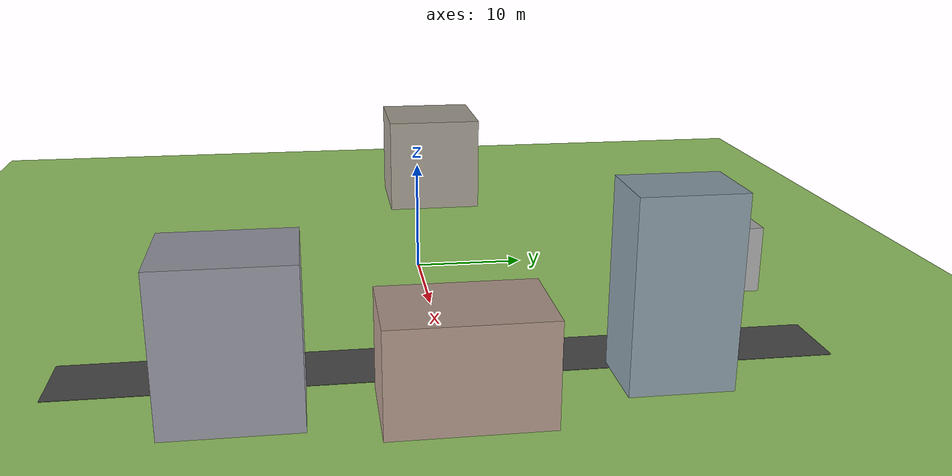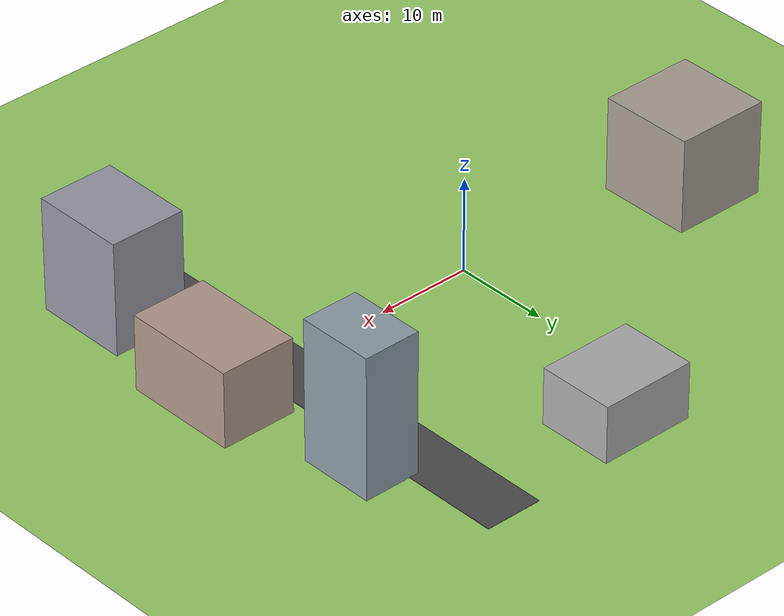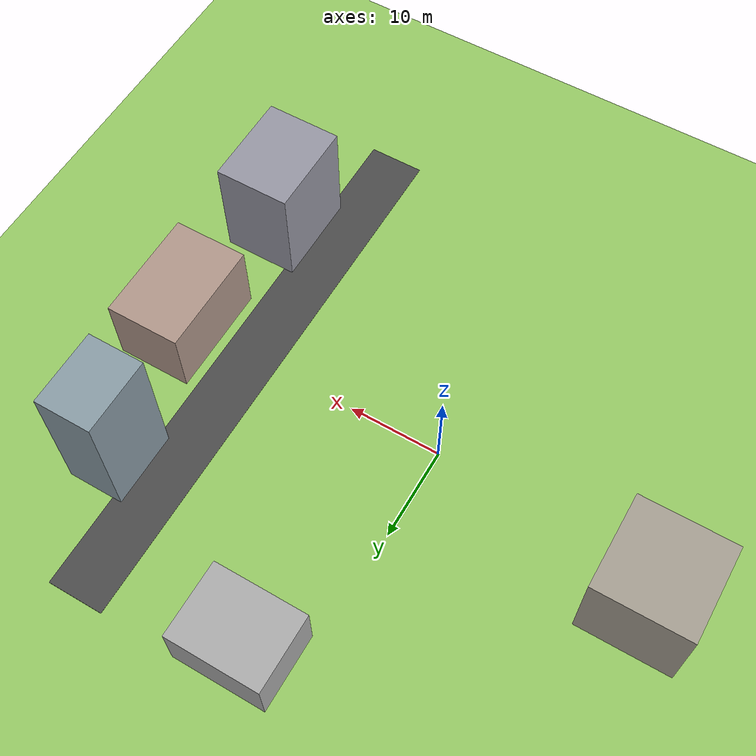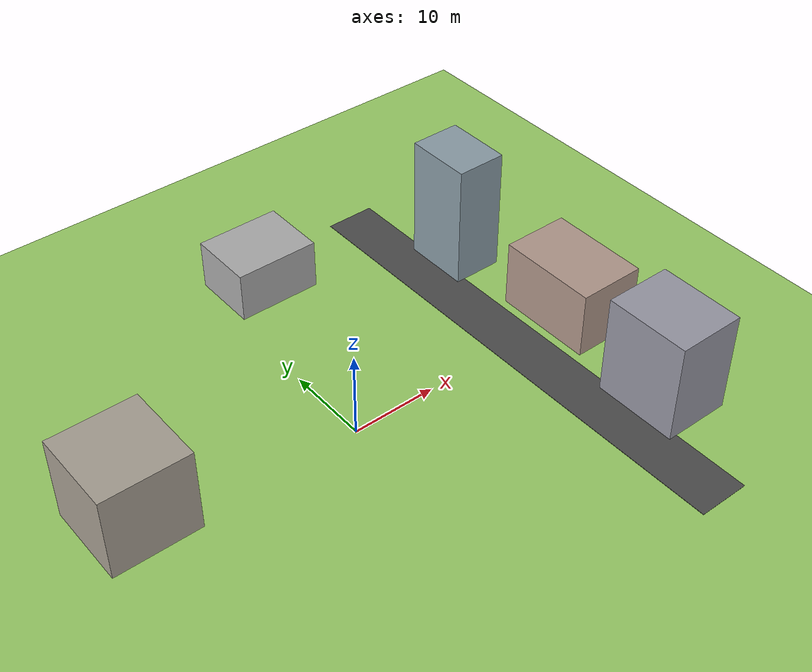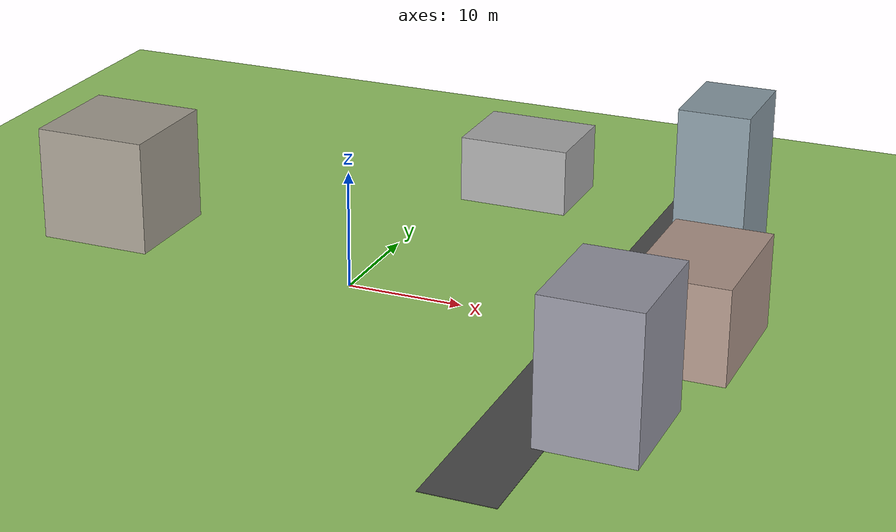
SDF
<sdf version="1.10">
 <world name="street_world">
  <physics name="1ms" type="ignored">
   <max_step_size>0.001</max_step_size>
   <real_time_factor>1</real_time_factor>
   <real_time_update_rate>1000</real_time_update_rate>
  </physics>
  <plugin name="gz::sim::systems::Physics" filename="gz-sim-physics-system"/>
  <plugin name="gz::sim::systems::UserCommands" filename="gz-sim-user-commands-system"/>
  <plugin name="gz::sim::systems::SceneBroadcaster" filename="gz-sim-scene-broadcaster-system"/>
  <plugin name="gz::sim::systems::Sensors" filename="gz-sim-sensors-system">
   <render_engine>ogre2</render_engine>
  </plugin>
  <plugin name="gz::sim::systems::Imu" filename="gz-sim-imu-system"/>
  <plugin name="gz::sim::systems::NavSat" filename="gz-sim-navsat-system"/>
  <spherical_coordinates>
   <latitude_deg>-35.363261999999999</latitude_deg>
   <longitude_deg>149.16523699999999</longitude_deg>
   <elevation>584</elevation>
   <heading_deg>0</heading_deg>
   <surface_model>EARTH_WGS84</surface_model>
  </spherical_coordinates>
  <scene>
   <ambient>0.600000024 0.600000024 0.600000024 1</ambient>
   <background>0.800000012 0.899999976 1 1</background>
   <sky><clouds><speed>12</speed></clouds></sky>
   <shadows>true</shadows>
  </scene>
  <gravity>0 0 -9.8000000000000007</gravity>
  <magnetic_field>5.5644999999999998e-06 2.2875799999999999e-05 -4.2388400000000002e-05</magnetic_field>
  <atmosphere type="adiabatic"/>
  <model name="ground_plane">
   <static>true</static>
   <link name="link">
    <collision name="collision">
     <geometry><plane><normal>0 0 1</normal><size>200 200</size></plane></geometry>
    </collision>
    <visual name="visual">
     <geometry><plane><normal>0 0 1</normal><size>200 200</size></plane></geometry>
     <material>
      <ambient>0.400000006 0.600000024 0.300000012 1</ambient>
      <diffuse>0.600000024 0.800000012 0.400000006 1</diffuse>
     </material>
    </visual>
    <inertial>
     <mass>1</mass>
     <inertia><ixx>1</ixx><ixy>0</ixy><ixz>0</ixz><iyy>1</iyy><iyz>0</iyz><izz>1</izz></inertia>
    </inertial>
   </link>
  </model>
  <model name="road">
   <static>true</static>
   <pose>22 0 0.02 0 0 0</pose>
   <link name="link">
    <visual name="visual">
     <geometry><box><size>6 60 0.040000000000000001</size></box></geometry>
     <material>
      <ambient>0.200000003 0.200000003 0.200000003 1</ambient>
      <diffuse>0.300000012 0.300000012 0.300000012 1</diffuse>
     </material>
    </visual>
    <inertial>
     <mass>1</mass>
     <inertia><ixx>1</ixx><ixy>0</ixy><ixz>0</ixz><iyy>1</iyy><iyz>0</iyz><izz>1</izz></inertia>
    </inertial>
   </link>
  </model>
  <model name="building_n1">
   <static>true</static>
   <pose>28 -16 6 0 0 0</pose>
   <link name="link">
    <collision name="collision"><geometry><box><size>8 10 12</size></box></geometry></collision>
    <visual name="visual">
     <geometry><box><size>8 10 12</size></box></geometry>
     <material>
      <ambient>0.449999988 0.449999988 0.5 1</ambient>
      <diffuse>0.600000024 0.600000024 0.649999976 1</diffuse>
     </material>
    </visual>
    <inertial>
     <mass>1</mass>
     <inertia><ixx>1</ixx><ixy>0</ixy><ixz>0</ixz><iyy>1</iyy><iyz>0</iyz><izz>1</izz></inertia>
    </inertial>
   </link>
  </model>
  <model name="building_n2">
   <static>true</static>
   <pose>30 0 4 0 0 0</pose>
   <link name="link">
    <collision name="collision"><geometry><box><size>8 12 8</size></box></geometry></collision>
    <visual name="visual">
     <geometry><box><size>8 12 8</size></box></geometry>
     <material>
      <ambient>0.5 0.419999987 0.379999995 1</ambient>
      <diffuse>0.699999988 0.600000024 0.550000012 1</diffuse>
     </material>
    </visual>
    <inertial>
     <mass>1</mass>
     <inertia><ixx>1</ixx><ixy>0</ixy><ixz>0</ixz><iyy>1</iyy><iyz>0</iyz><izz>1</izz></inertia>
    </inertial>
   </link>
  </model>
  <model name="building_n3">
   <static>true</static>
   <pose>27 16 7.5 0 0 0</pose>
   <link name="link">
    <collision name="collision"><geometry><box><size>6 8 15</size></box></geometry></collision>
    <visual name="visual">
     <geometry><box><size>6 8 15</size></box></geometry>
     <material>
      <ambient>0.400000006 0.449999988 0.479999989 1</ambient>
      <diffuse>0.550000012 0.620000005 0.660000026 1</diffuse>
     </material>
    </visual>
    <inertial>
     <mass>1</mass>
     <inertia><ixx>1</ixx><ixy>0</ixy><ixz>0</ixz><iyy>1</iyy><iyz>0</iyz><izz>1</izz></inertia>
    </inertial>
   </link>
  </model>
  <model name="building_s1">
   <static>true</static>
   <pose>-24 4 5 0 0 0</pose>
   <link name="link">
    <collision name="collision"><geometry><box><size>10 10 10</size></box></geometry></collision>
    <visual name="visual">
     <geometry><box><size>10 10 10</size></box></geometry>
     <material>
      <ambient>0.479999989 0.460000008 0.419999987 1</ambient>
      <diffuse>0.660000026 0.629999995 0.579999983 1</diffuse>
     </material>
    </visual>
    <inertial>
     <mass>1</mass>
     <inertia><ixx>1</ixx><ixy>0</ixy><ixz>0</ixz><iyy>1</iyy><iyz>0</iyz><izz>1</izz></inertia>
    </inertial>
   </link>
  </model>
  <model name="building_e1">
   <static>true</static>
   <pose>6 26 3 0 0 0</pose>
   <link name="link">
    <collision name="collision"><geometry><box><size>10 8 6</size></box></geometry></collision>
    <visual name="visual">
     <geometry><box><size>10 8 6</size></box></geometry>
     <material><ambient>0.5 0.5 0.5 1</ambient><diffuse>0.680000007 0.680000007 0.680000007 1</diffuse></material>
    </visual>
    <inertial>
     <mass>1</mass>
     <inertia><ixx>1</ixx><ixy>0</ixy><ixz>0</ixz><iyy>1</iyy><iyz>0</iyz><izz>1</izz></inertia>
    </inertial>
   </link>
  </model>
  <light name="sun" type="directional">
   <pose>0 0 10 0 0 0</pose>
   <intensity>1</intensity>
   <direction>-0.5 0.10000000000000001 -0.90000000000000002</direction>
   <diffuse>0.800000012 0.800000012 0.800000012 1</diffuse>
   <specular>0.200000003 0.200000003 0.200000003 1</specular>
   <attenuation><range>10</range><linear>1</linear><constant>1</constant><quadratic>0</quadratic></attenuation>
   <spot><inner_angle>0</inner_angle><outer_angle>0</outer_angle><falloff>0</falloff></spot>
  </light>
 </world>
</sdf>
